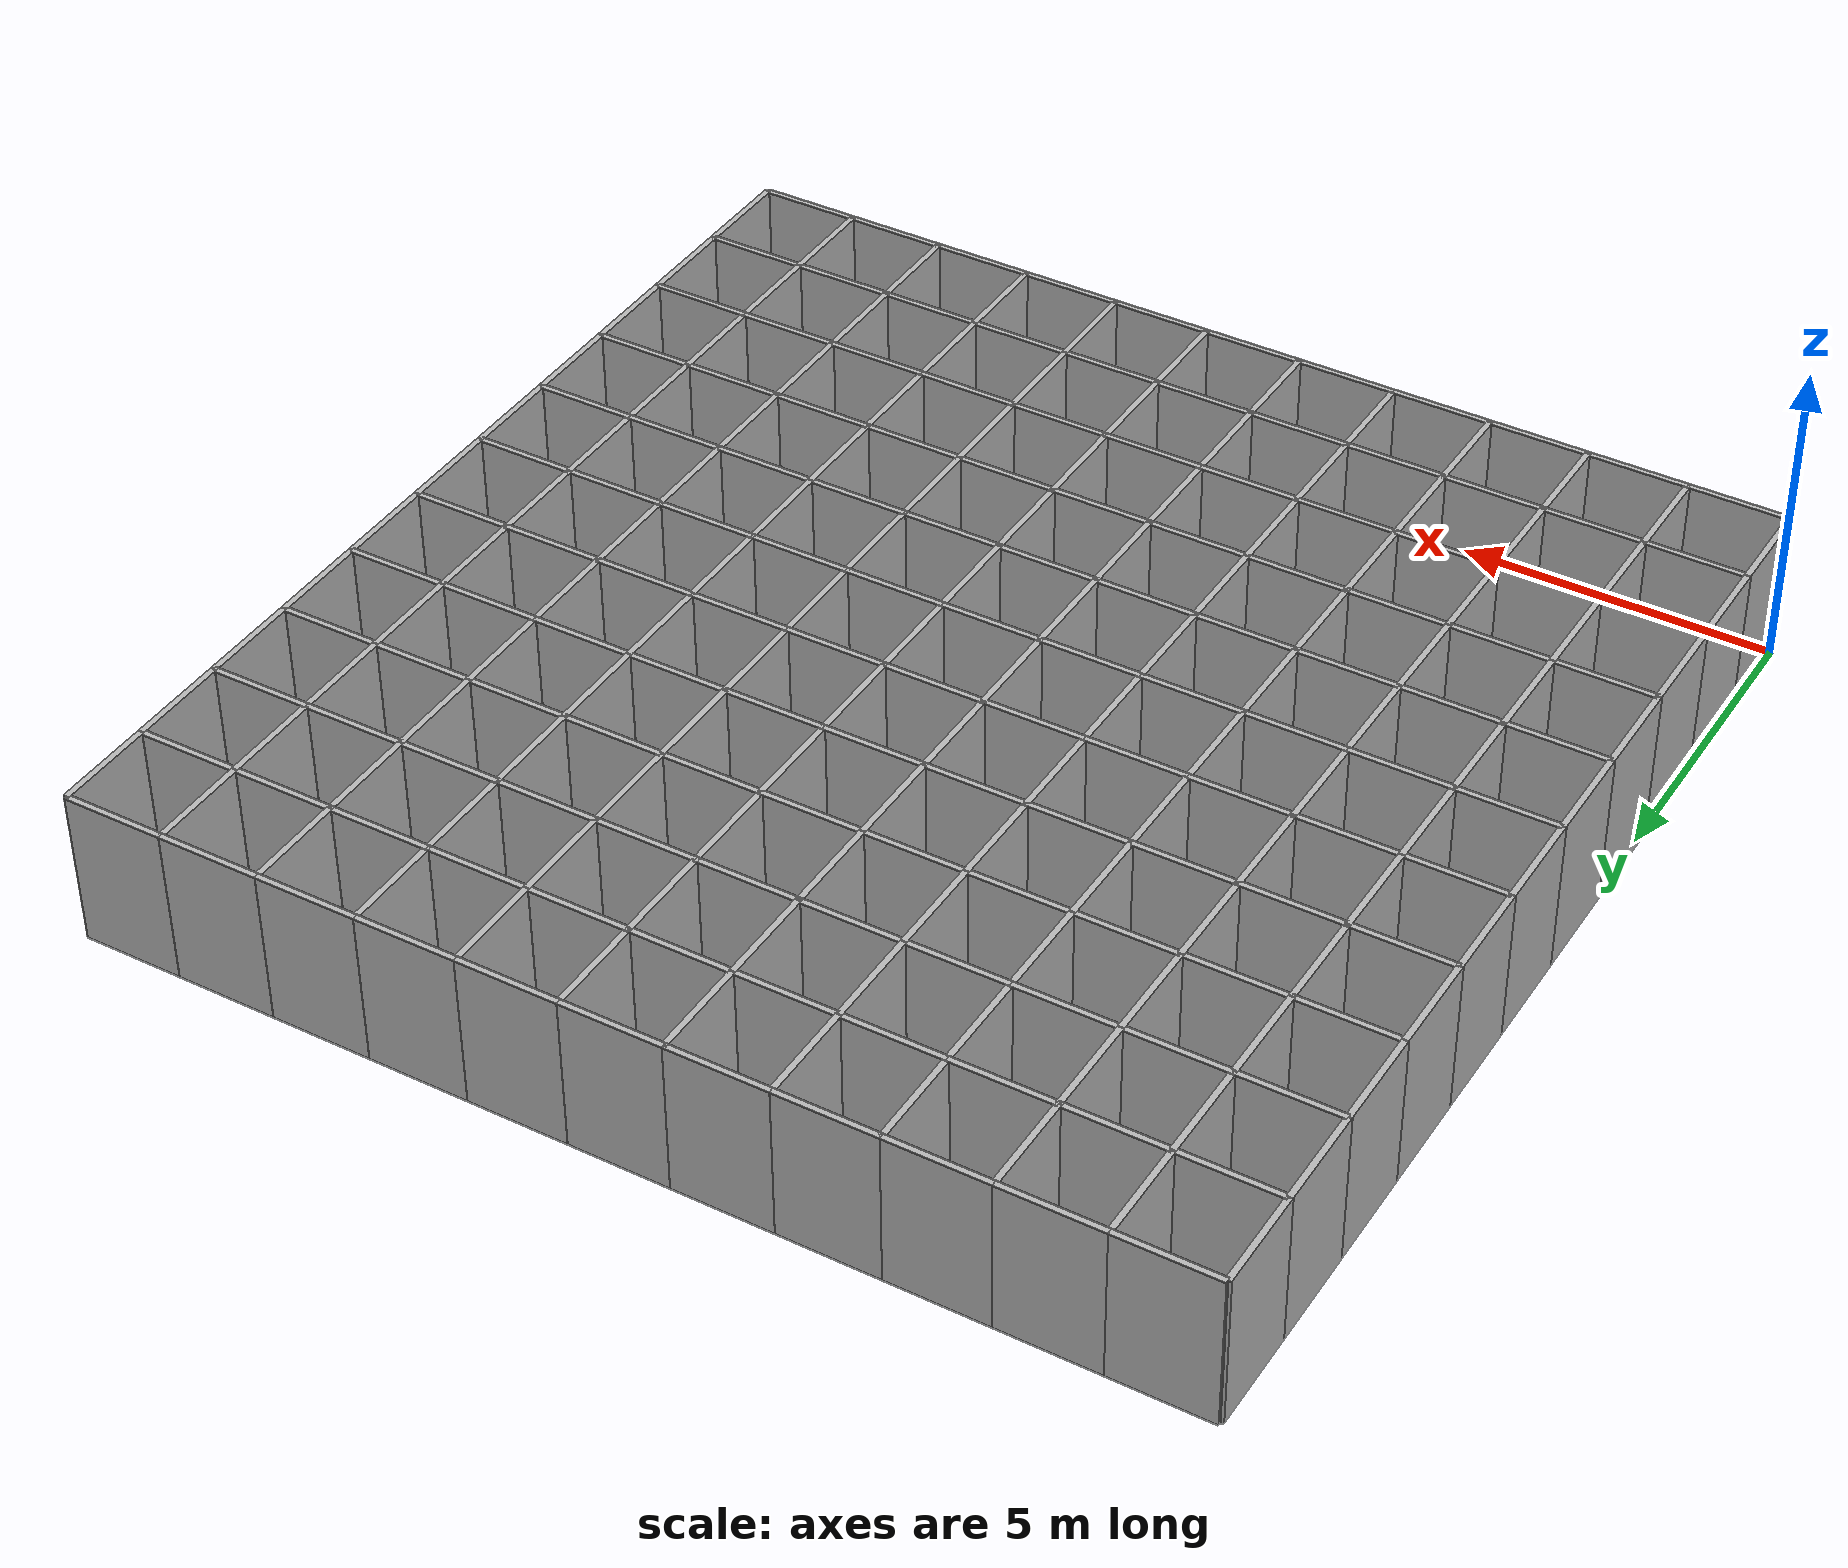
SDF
<?xml version="1.0" ?>
<sdf version="1.5">
  <model name="base_map">

    <include>
      <name>r1_0</name>
      <pose>0.8 0 0 0 0 0</pose>
      <uri>model://wall_unit_1_7</uri>
    </include>
    <include>
      <name>r2_0</name>
      <pose>2.4 0 0 0 0 0</pose>
      <uri>model://wall_unit_1_7</uri>
    </include>
    <include>
      <name>r3_0</name>
      <pose>4 0 0 0 0 0</pose>
      <uri>model://wall_unit_1_7</uri>
    </include>
    <include>
      <name>r4_0</name>
      <pose>5.6 0 0 0 0 0</pose>
      <uri>model://wall_unit_1_7</uri>
    </include>
    <include>
      <name>r5_0</name>
      <pose>7.2 0 0 0 0 0</pose>
      <uri>model://wall_unit_1_7</uri>
    </include>
    <include>
      <name>r6_0</name>
      <pose>8.8 0 0 0 0 0</pose>
      <uri>model://wall_unit_1_7</uri>
    </include>
    <include>
      <name>r7_0</name>
      <pose>10.4 0 0 0 0 0</pose>
      <uri>model://wall_unit_1_7</uri>
    </include>
    <include>
      <name>r8_0</name>
      <pose>12 0 0 0 0 0</pose>
      <uri>model://wall_unit_1_7</uri>
    </include>
    <include>
      <name>r9_0</name>
      <pose>13.6 0 0 0 0 0</pose>
      <uri>model://wall_unit_1_7</uri>
    </include>
    <include>
      <name>r10_0</name>
      <pose>15.2 0 0 0 0 0</pose>
      <uri>model://wall_unit_1_7</uri>
    </include>
    <include>
      <name>r11_0</name>
      <pose>16.8 0 0 0 0 0</pose>
      <uri>model://wall_unit_1_7</uri>
    </include>

    <include>
      <name>r1_1</name>
      <pose>0.8 1.6 0 0 0 0</pose>
      <uri>model://wall_unit_1_7</uri>
    </include>
    <include>
      <name>r2_1</name>
      <pose>2.4 1.6 0 0 0 0</pose>
      <uri>model://wall_unit_1_7</uri>
    </include>
    <include>
      <name>r3_1</name>
      <pose>4 1.6 0 0 0 0</pose>
      <uri>model://wall_unit_1_7</uri>
    </include>
    <include>
      <name>r4_1</name>
      <pose>5.6 1.6 0 0 0 0</pose>
      <uri>model://wall_unit_1_7</uri>
    </include>
    <include>
      <name>r5_1</name>
      <pose>7.2 1.6 0 0 0 0</pose>
      <uri>model://wall_unit_1_7</uri>
    </include>
    <include>
      <name>r6_1</name>
      <pose>8.8 1.6 0 0 0 0</pose>
      <uri>model://wall_unit_1_7</uri>
    </include>
    <include>
      <name>r7_1</name>
      <pose>10.4 1.6 0 0 0 0</pose>
      <uri>model://wall_unit_1_7</uri>
    </include>
    <include>
      <name>r8_1</name>
      <pose>12 1.6 0 0 0 0</pose>
      <uri>model://wall_unit_1_7</uri>
    </include>
    <include>
      <name>r9_1</name>
      <pose>13.6 1.6 0 0 0 0</pose>
      <uri>model://wall_unit_1_7</uri>
    </include>
    <include>
      <name>r10_1</name>
      <pose>15.2 1.6 0 0 0 0</pose>
      <uri>model://wall_unit_1_7</uri>
    </include>
    <include>
      <name>r11_1</name>
      <pose>16.8 1.6 0 0 0 0</pose>
      <uri>model://wall_unit_1_7</uri>
    </include>

    <include>
      <name>r1_2</name>
      <pose>0.8 3.2 0 0 0 0</pose>
      <uri>model://wall_unit_1_7</uri>
    </include>
    <include>
      <name>r2_2</name>
      <pose>2.4 3.2 0 0 0 0</pose>
      <uri>model://wall_unit_1_7</uri>
    </include>
    <include>
      <name>r3_2</name>
      <pose>4 3.2 0 0 0 0</pose>
      <uri>model://wall_unit_1_7</uri>
    </include>
    <include>
      <name>r4_2</name>
      <pose>5.6 3.2 0 0 0 0</pose>
      <uri>model://wall_unit_1_7</uri>
    </include>
    <include>
      <name>r5_2</name>
      <pose>7.2 3.2 0 0 0 0</pose>
      <uri>model://wall_unit_1_7</uri>
    </include>
    <include>
      <name>r6_2</name>
      <pose>8.8 3.2 0 0 0 0</pose>
      <uri>model://wall_unit_1_7</uri>
    </include>
    <include>
      <name>r7_2</name>
      <pose>10.4 3.2 0 0 0 0</pose>
      <uri>model://wall_unit_1_7</uri>
    </include>
    <include>
      <name>r8_2</name>
      <pose>12 3.2 0 0 0 0</pose>
      <uri>model://wall_unit_1_7</uri>
    </include>
    <include>
      <name>r9_2</name>
      <pose>13.6 3.2 0 0 0 0</pose>
      <uri>model://wall_unit_1_7</uri>
    </include>
    <include>
      <name>r10_2</name>
      <pose>15.2 3.2 0 0 0 0</pose>
      <uri>model://wall_unit_1_7</uri>
    </include>
    <include>
      <name>r11_2</name>
      <pose>16.8 3.2 0 0 0 0</pose>
      <uri>model://wall_unit_1_7</uri>
    </include>

    <include>
      <name>r1_3</name>
      <pose>0.8 4.8 0 0 0 0</pose>
      <uri>model://wall_unit_1_7</uri>
    </include>
    <include>
      <name>r2_3</name>
      <pose>2.4 4.8 0 0 0 0</pose>
      <uri>model://wall_unit_1_7</uri>
    </include>
    <include>
      <name>r3_3</name>
      <pose>4 4.8 0 0 0 0</pose>
      <uri>model://wall_unit_1_7</uri>
    </include>
    <include>
      <name>r4_3</name>
      <pose>5.6 4.8 0 0 0 0</pose>
      <uri>model://wall_unit_1_7</uri>
    </include>
    <include>
      <name>r5_3</name>
      <pose>7.2 4.8 0 0 0 0</pose>
      <uri>model://wall_unit_1_7</uri>
    </include>
    <include>
      <name>r6_3</name>
      <pose>8.8 4.8 0 0 0 0</pose>
      <uri>model://wall_unit_1_7</uri>
    </include>
    <include>
      <name>r7_3</name>
      <pose>10.4 4.8 0 0 0 0</pose>
      <uri>model://wall_unit_1_7</uri>
    </include>
    <include>
      <name>r8_3</name>
      <pose>12 4.8 0 0 0 0</pose>
      <uri>model://wall_unit_1_7</uri>
    </include>
    <include>
      <name>r9_3</name>
      <pose>13.6 4.8 0 0 0 0</pose>
      <uri>model://wall_unit_1_7</uri>
    </include>
    <include>
      <name>r10_3</name>
      <pose>15.2 4.8 0 0 0 0</pose>
      <uri>model://wall_unit_1_7</uri>
    </include>
    <include>
      <name>r11_3</name>
      <pose>16.8 4.8 0 0 0 0</pose>
      <uri>model://wall_unit_1_7</uri>
    </include>

    <include>
      <name>r1_4</name>
      <pose>0.8 6.4 0 0 0 0</pose>
      <uri>model://wall_unit_1_7</uri>
    </include>
    <include>
      <name>r2_4</name>
      <pose>2.4 6.4 0 0 0 0</pose>
      <uri>model://wall_unit_1_7</uri>
    </include>
    <include>
      <name>r3_4</name>
      <pose>4 6.4 0 0 0 0</pose>
      <uri>model://wall_unit_1_7</uri>
    </include>
    <include>
      <name>r4_4</name>
      <pose>5.6 6.4 0 0 0 0</pose>
      <uri>model://wall_unit_1_7</uri>
    </include>
    <include>
      <name>r5_4</name>
      <pose>7.2 6.4 0 0 0 0</pose>
      <uri>model://wall_unit_1_7</uri>
    </include>
    <include>
      <name>r6_4</name>
      <pose>8.8 6.4 0 0 0 0</pose>
      <uri>model://wall_unit_1_7</uri>
    </include>
    <include>
      <name>r7_4</name>
      <pose>10.4 6.4 0 0 0 0</pose>
      <uri>model://wall_unit_1_7</uri>
    </include>
    <include>
      <name>r8_4</name>
      <pose>12 6.4 0 0 0 0</pose>
      <uri>model://wall_unit_1_7</uri>
    </include>
    <include>
      <name>r9_4</name>
      <pose>13.6 6.4 0 0 0 0</pose>
      <uri>model://wall_unit_1_7</uri>
    </include>
    <include>
      <name>r10_4</name>
      <pose>15.2 6.4 0 0 0 0</pose>
      <uri>model://wall_unit_1_7</uri>
    </include>
    <include>
      <name>r11_4</name>
      <pose>16.8 6.4 0 0 0 0</pose>
      <uri>model://wall_unit_1_7</uri>
    </include>

    <include>
      <name>r1_5</name>
      <pose>0.8 8 0 0 0 0</pose>
      <uri>model://wall_unit_1_7</uri>
    </include>
    <include>
      <name>r2_5</name>
      <pose>2.4 8 0 0 0 0</pose>
      <uri>model://wall_unit_1_7</uri>
    </include>
    <include>
      <name>r3_5</name>
      <pose>4 8 0 0 0 0</pose>
      <uri>model://wall_unit_1_7</uri>
    </include>
    <include>
      <name>r4_5</name>
      <pose>5.6 8 0 0 0 0</pose>
      <uri>model://wall_unit_1_7</uri>
    </include>
    <include>
      <name>r5_5</name>
      <pose>7.2 8 0 0 0 0</pose>
      <uri>model://wall_unit_1_7</uri>
    </include>
    <include>
      <name>r6_5</name>
      <pose>8.8 8 0 0 0 0</pose>
      <uri>model://wall_unit_1_7</uri>
    </include>
    <include>
      <name>r7_5</name>
      <pose>10.4 8 0 0 0 0</pose>
      <uri>model://wall_unit_1_7</uri>
    </include>
    <include>
      <name>r8_5</name>
      <pose>12 8 0 0 0 0</pose>
      <uri>model://wall_unit_1_7</uri>
    </include>
    <include>
      <name>r9_5</name>
      <pose>13.6 8 0 0 0 0</pose>
      <uri>model://wall_unit_1_7</uri>
    </include>
    <include>
      <name>r10_5</name>
      <pose>15.2 8 0 0 0 0</pose>
      <uri>model://wall_unit_1_7</uri>
    </include>
    <include>
      <name>r11_5</name>
      <pose>16.8 8 0 0 0 0</pose>
      <uri>model://wall_unit_1_7</uri>
    </include>

    <include>
      <name>r1_6</name>
      <pose>0.8 9.6 0 0 0 0</pose>
      <uri>model://wall_unit_1_7</uri>
    </include>
    <include>
      <name>r2_6</name>
      <pose>2.4 9.6 0 0 0 0</pose>
      <uri>model://wall_unit_1_7</uri>
    </include>
    <include>
      <name>r3_6</name>
      <pose>4 9.6 0 0 0 0</pose>
      <uri>model://wall_unit_1_7</uri>
    </include>
    <include>
      <name>r4_6</name>
      <pose>5.6 9.6 0 0 0 0</pose>
      <uri>model://wall_unit_1_7</uri>
    </include>
    <include>
      <name>r5_6</name>
      <pose>7.2 9.6 0 0 0 0</pose>
      <uri>model://wall_unit_1_7</uri>
    </include>
    <include>
      <name>r6_6</name>
      <pose>8.8 9.6 0 0 0 0</pose>
      <uri>model://wall_unit_1_7</uri>
    </include>
    <include>
      <name>r7_6</name>
      <pose>10.4 9.6 0 0 0 0</pose>
      <uri>model://wall_unit_1_7</uri>
    </include>
    <include>
      <name>r8_6</name>
      <pose>12 9.6 0 0 0 0</pose>
      <uri>model://wall_unit_1_7</uri>
    </include>
    <include>
      <name>r9_6</name>
      <pose>13.6 9.6 0 0 0 0</pose>
      <uri>model://wall_unit_1_7</uri>
    </include>
    <include>
      <name>r10_6</name>
      <pose>15.2 9.6 0 0 0 0</pose>
      <uri>model://wall_unit_1_7</uri>
    </include>
    <include>
      <name>r11_6</name>
      <pose>16.8 9.6 0 0 0 0</pose>
      <uri>model://wall_unit_1_7</uri>
    </include>

    <include>
      <name>r1_7</name>
      <pose>0.8 11.2 0 0 0 0</pose>
      <uri>model://wall_unit_1_7</uri>
    </include>
    <include>
      <name>r2_7</name>
      <pose>2.4 11.2 0 0 0 0</pose>
      <uri>model://wall_unit_1_7</uri>
    </include>
    <include>
      <name>r3_7</name>
      <pose>4 11.2 0 0 0 0</pose>
      <uri>model://wall_unit_1_7</uri>
    </include>
    <include>
      <name>r4_7</name>
      <pose>5.6 11.2 0 0 0 0</pose>
      <uri>model://wall_unit_1_7</uri>
    </include>
    <include>
      <name>r5_7</name>
      <pose>7.2 11.2 0 0 0 0</pose>
      <uri>model://wall_unit_1_7</uri>
    </include>
    <include>
      <name>r6_7</name>
      <pose>8.8 11.2 0 0 0 0</pose>
      <uri>model://wall_unit_1_7</uri>
    </include>
    <include>
      <name>r7_7</name>
      <pose>10.4 11.2 0 0 0 0</pose>
      <uri>model://wall_unit_1_7</uri>
    </include>
    <include>
      <name>r8_7</name>
      <pose>12 11.2 0 0 0 0</pose>
      <uri>model://wall_unit_1_7</uri>
    </include>
    <include>
      <name>r9_7</name>
      <pose>13.6 11.2 0 0 0 0</pose>
      <uri>model://wall_unit_1_7</uri>
    </include>
    <include>
      <name>r10_7</name>
      <pose>15.2 11.2 0 0 0 0</pose>
      <uri>model://wall_unit_1_7</uri>
    </include>
    <include>
      <name>r11_7</name>
      <pose>16.8 11.2 0 0 0 0</pose>
      <uri>model://wall_unit_1_7</uri>
    </include>

    <include>
      <name>r1_8</name>
      <pose>0.8 12.8 0 0 0 0</pose>
      <uri>model://wall_unit_1_7</uri>
    </include>
    <include>
      <name>r2_8</name>
      <pose>2.4 12.8 0 0 0 0</pose>
      <uri>model://wall_unit_1_7</uri>
    </include>
    <include>
      <name>r3_8</name>
      <pose>4 12.8 0 0 0 0</pose>
      <uri>model://wall_unit_1_7</uri>
    </include>
    <include>
      <name>r4_8</name>
      <pose>5.6 12.8 0 0 0 0</pose>
      <uri>model://wall_unit_1_7</uri>
    </include>
    <include>
      <name>r5_8</name>
      <pose>7.2 12.8 0 0 0 0</pose>
      <uri>model://wall_unit_1_7</uri>
    </include>
    <include>
      <name>r6_8</name>
      <pose>8.8 12.8 0 0 0 0</pose>
      <uri>model://wall_unit_1_7</uri>
    </include>
    <include>
      <name>r7_8</name>
      <pose>10.4 12.8 0 0 0 0</pose>
      <uri>model://wall_unit_1_7</uri>
    </include>
    <include>
      <name>r8_8</name>
      <pose>12 12.8 0 0 0 0</pose>
      <uri>model://wall_unit_1_7</uri>
    </include>
    <include>
      <name>r9_8</name>
      <pose>13.6 12.8 0 0 0 0</pose>
      <uri>model://wall_unit_1_7</uri>
    </include>
    <include>
      <name>r10_8</name>
      <pose>15.2 12.8 0 0 0 0</pose>
      <uri>model://wall_unit_1_7</uri>
    </include>
    <include>
      <name>r11_8</name>
      <pose>16.8 12.8 0 0 0 0</pose>
      <uri>model://wall_unit_1_7</uri>
    </include>

    <include>
      <name>r1_9</name>
      <pose>0.8 14.4 0 0 0 0</pose>
      <uri>model://wall_unit_1_7</uri>
    </include>
    <include>
      <name>r2_9</name>
      <pose>2.4 14.4 0 0 0 0</pose>
      <uri>model://wall_unit_1_7</uri>
    </include>
    <include>
      <name>r3_9</name>
      <pose>4 14.4 0 0 0 0</pose>
      <uri>model://wall_unit_1_7</uri>
    </include>
    <include>
      <name>r4_9</name>
      <pose>5.6 14.4 0 0 0 0</pose>
      <uri>model://wall_unit_1_7</uri>
    </include>
    <include>
      <name>r5_9</name>
      <pose>7.2 14.4 0 0 0 0</pose>
      <uri>model://wall_unit_1_7</uri>
    </include>
    <include>
      <name>r6_9</name>
      <pose>8.8 14.4 0 0 0 0</pose>
      <uri>model://wall_unit_1_7</uri>
    </include>
    <include>
      <name>r7_9</name>
      <pose>10.4 14.4 0 0 0 0</pose>
      <uri>model://wall_unit_1_7</uri>
    </include>
    <include>
      <name>r8_9</name>
      <pose>12 14.4 0 0 0 0</pose>
      <uri>model://wall_unit_1_7</uri>
    </include>
    <include>
      <name>r9_9</name>
      <pose>13.6 14.4 0 0 0 0</pose>
      <uri>model://wall_unit_1_7</uri>
    </include>
    <include>
      <name>r10_9</name>
      <pose>15.2 14.4 0 0 0 0</pose>
      <uri>model://wall_unit_1_7</uri>
    </include>
    <include>
      <name>r11_9</name>
      <pose>16.8 14.4 0 0 0 0</pose>
      <uri>model://wall_unit_1_7</uri>
    </include>

    <include>
      <name>r1_10</name>
      <pose>0.8 16 0 0 0 0</pose>
      <uri>model://wall_unit_1_7</uri>
    </include>
    <include>
      <name>r2_10</name>
      <pose>2.4 16 0 0 0 0</pose>
      <uri>model://wall_unit_1_7</uri>
    </include>
    <include>
      <name>r3_10</name>
      <pose>4 16 0 0 0 0</pose>
      <uri>model://wall_unit_1_7</uri>
    </include>
    <include>
      <name>r4_10</name>
      <pose>5.6 16 0 0 0 0</pose>
      <uri>model://wall_unit_1_7</uri>
    </include>
    <include>
      <name>r5_10</name>
      <pose>7.2 16 0 0 0 0</pose>
      <uri>model://wall_unit_1_7</uri>
    </include>
    <include>
      <name>r6_10</name>
      <pose>8.8 16 0 0 0 0</pose>
      <uri>model://wall_unit_1_7</uri>
    </include>
    <include>
      <name>r7_10</name>
      <pose>10.4 16 0 0 0 0</pose>
      <uri>model://wall_unit_1_7</uri>
    </include>
    <include>
      <name>r8_10</name>
      <pose>12 16 0 0 0 0</pose>
      <uri>model://wall_unit_1_7</uri>
    </include>
    <include>
      <name>r9_10</name>
      <pose>13.6 16 0 0 0 0</pose>
      <uri>model://wall_unit_1_7</uri>
    </include>
    <include>
      <name>r10_10</name>
      <pose>15.2 16 0 0 0 0</pose>
      <uri>model://wall_unit_1_7</uri>
    </include>
    <include>
      <name>r11_10</name>
      <pose>16.8 16 0 0 0 0</pose>
      <uri>model://wall_unit_1_7</uri>
    </include>

    <include>
      <name>r1_11</name>
      <pose>0.8 17.6 0 0 0 0</pose>
      <uri>model://wall_unit_1_7</uri>
    </include>
    <include>
      <name>r2_11</name>
      <pose>2.4 17.6 0 0 0 0</pose>
      <uri>model://wall_unit_1_7</uri>
    </include>
    <include>
      <name>r3_11</name>
      <pose>4 17.6 0 0 0 0</pose>
      <uri>model://wall_unit_1_7</uri>
    </include>
    <include>
      <name>r4_11</name>
      <pose>5.6 17.6 0 0 0 0</pose>
      <uri>model://wall_unit_1_7</uri>
    </include>
    <include>
      <name>r5_11</name>
      <pose>7.2 17.6 0 0 0 0</pose>
      <uri>model://wall_unit_1_7</uri>
    </include>
    <include>
      <name>r6_11</name>
      <pose>8.8 17.6 0 0 0 0</pose>
      <uri>model://wall_unit_1_7</uri>
    </include>
    <include>
      <name>r7_11</name>
      <pose>10.4 17.6 0 0 0 0</pose>
      <uri>model://wall_unit_1_7</uri>
    </include>
    <include>
      <name>r8_11</name>
      <pose>12 17.6 0 0 0 0</pose>
      <uri>model://wall_unit_1_7</uri>
    </include>
    <include>
      <name>r9_11</name>
      <pose>13.6 17.6 0 0 0 0</pose>
      <uri>model://wall_unit_1_7</uri>
    </include>
    <include>
      <name>r10_11</name>
      <pose>15.2 17.6 0 0 0 0</pose>
      <uri>model://wall_unit_1_7</uri>
    </include>
    <include>
      <name>r11_11</name>
      <pose>16.8 17.6 0 0 0 0</pose>
      <uri>model://wall_unit_1_7</uri>
    </include>

    <include>
      <name>c0_1</name>
      <pose>0 0.8 0 0 0 1.57</pose>
      <uri>model://wall_unit_1_7</uri>
    </include>
    <include>
      <name>c0_2</name>
      <pose>0 2.4 0 0 0 1.57</pose>
      <uri>model://wall_unit_1_7</uri>
    </include>
    <include>
      <name>c0_3</name>
      <pose>0 4 0 0 0 1.57</pose>
      <uri>model://wall_unit_1_7</uri>
    </include>
    <include>
      <name>c0_4</name>
      <pose>0 5.6 0 0 0 1.57</pose>
      <uri>model://wall_unit_1_7</uri>
    </include>
    <include>
      <name>c0_5</name>
      <pose>0 7.2 0 0 0 1.57</pose>
      <uri>model://wall_unit_1_7</uri>
    </include>
    <include>
      <name>c0_6</name>
      <pose>0 8.8 0 0 0 1.57</pose>
      <uri>model://wall_unit_1_7</uri>
    </include>
    <include>
      <name>c0_7</name>
      <pose>0 10.4 0 0 0 1.57</pose>
      <uri>model://wall_unit_1_7</uri>
    </include>
    <include>
      <name>c0_8</name>
      <pose>0 12 0 0 0 1.57</pose>
      <uri>model://wall_unit_1_7</uri>
    </include>
    <include>
      <name>c0_9</name>
      <pose>0 13.6 0 0 0 1.57</pose>
      <uri>model://wall_unit_1_7</uri>
    </include>
    <include>
      <name>c0_10</name>
      <pose>0 15.2 0 0 0 1.57</pose>
      <uri>model://wall_unit_1_7</uri>
    </include>
    <include>
      <name>c0_11</name>
      <pose>0 16.8 0 0 0 1.57</pose>
      <uri>model://wall_unit_1_7</uri>
    </include>

    <include>
      <name>c1_1</name>
      <pose>1.6 0.8 0 0 0 1.57</pose>
      <uri>model://wall_unit_1_7</uri>
    </include>
    <include>
      <name>c1_2</name>
      <pose>1.6 2.4 0 0 0 1.57</pose>
      <uri>model://wall_unit_1_7</uri>
    </include>
    <include>
      <name>c1_3</name>
      <pose>1.6 4 0 0 0 1.57</pose>
      <uri>model://wall_unit_1_7</uri>
    </include>
    <include>
      <name>c1_4</name>
      <pose>1.6 5.6 0 0 0 1.57</pose>
      <uri>model://wall_unit_1_7</uri>
    </include>
    <include>
      <name>c1_5</name>
      <pose>1.6 7.2 0 0 0 1.57</pose>
      <uri>model://wall_unit_1_7</uri>
    </include>
    <include>
      <name>c1_6</name>
      <pose>1.6 8.8 0 0 0 1.57</pose>
      <uri>model://wall_unit_1_7</uri>
    </include>
    <include>
      <name>c1_7</name>
      <pose>1.6 10.4 0 0 0 1.57</pose>
      <uri>model://wall_unit_1_7</uri>
    </include>
    <include>
      <name>c1_8</name>
      <pose>1.6 12 0 0 0 1.57</pose>
      <uri>model://wall_unit_1_7</uri>
    </include>
    <include>
      <name>c1_9</name>
      <pose>1.6 13.6 0 0 0 1.57</pose>
      <uri>model://wall_unit_1_7</uri>
    </include>
    <include>
      <name>c1_10</name>
      <pose>1.6 15.2 0 0 0 1.57</pose>
      <uri>model://wall_unit_1_7</uri>
    </include>
    <include>
      <name>c1_11</name>
      <pose>1.6 16.8 0 0 0 1.57</pose>
      <uri>model://wall_unit_1_7</uri>
    </include>

    <include>
      <name>c2_1</name>
      <pose>3.2 0.8 0 0 0 1.57</pose>
      <uri>model://wall_unit_1_7</uri>
    </include>
    <include>
      <name>c2_2</name>
      <pose>3.2 2.4 0 0 0 1.57</pose>
      <uri>model://wall_unit_1_7</uri>
    </include>
    <include>
      <name>c2_3</name>
      <pose>3.2 4 0 0 0 1.57</pose>
      <uri>model://wall_unit_1_7</uri>
    </include>
    <include>
      <name>c2_4</name>
      <pose>3.2 5.6 0 0 0 1.57</pose>
      <uri>model://wall_unit_1_7</uri>
    </include>
    <include>
      <name>c2_5</name>
      <pose>3.2 7.2 0 0 0 1.57</pose>
      <uri>model://wall_unit_1_7</uri>
    </include>
    <include>
      <name>c2_6</name>
      <pose>3.2 8.8 0 0 0 1.57</pose>
      <uri>model://wall_unit_1_7</uri>
    </include>
    <include>
      <name>c2_7</name>
      <pose>3.2 10.4 0 0 0 1.57</pose>
      <uri>model://wall_unit_1_7</uri>
    </include>
    <include>
      <name>c2_8</name>
      <pose>3.2 12 0 0 0 1.57</pose>
      <uri>model://wall_unit_1_7</uri>
    </include>
    <include>
      <name>c2_9</name>
      <pose>3.2 13.6 0 0 0 1.57</pose>
      <uri>model://wall_unit_1_7</uri>
    </include>
    <include>
      <name>c2_10</name>
      <pose>3.2 15.2 0 0 0 1.57</pose>
      <uri>model://wall_unit_1_7</uri>
    </include>
    <include>
      <name>c2_11</name>
      <pose>3.2 16.8 0 0 0 1.57</pose>
      <uri>model://wall_unit_1_7</uri>
    </include>

    <include>
      <name>c3_1</name>
      <pose>4.8 0.8 0 0 0 1.57</pose>
      <uri>model://wall_unit_1_7</uri>
    </include>
    <include>
      <name>c3_2</name>
      <pose>4.8 2.4 0 0 0 1.57</pose>
      <uri>model://wall_unit_1_7</uri>
    </include>
    <include>
      <name>c3_3</name>
      <pose>4.8 4 0 0 0 1.57</pose>
      <uri>model://wall_unit_1_7</uri>
    </include>
    <include>
      <name>c3_4</name>
      <pose>4.8 5.6 0 0 0 1.57</pose>
      <uri>model://wall_unit_1_7</uri>
    </include>
    <include>
      <name>c3_5</name>
      <pose>4.8 7.2 0 0 0 1.57</pose>
      <uri>model://wall_unit_1_7</uri>
    </include>
    <include>
      <name>c3_6</name>
      <pose>4.8 8.8 0 0 0 1.57</pose>
      <uri>model://wall_unit_1_7</uri>
    </include>
    <include>
      <name>c3_7</name>
      <pose>4.8 10.4 0 0 0 1.57</pose>
      <uri>model://wall_unit_1_7</uri>
    </include>
    <include>
      <name>c3_8</name>
      <pose>4.8 12 0 0 0 1.57</pose>
      <uri>model://wall_unit_1_7</uri>
    </include>
    <include>
      <name>c3_9</name>
      <pose>4.8 13.6 0 0 0 1.57</pose>
      <uri>model://wall_unit_1_7</uri>
    </include>
    <include>
      <name>c3_10</name>
      <pose>4.8 15.2 0 0 0 1.57</pose>
      <uri>model://wall_unit_1_7</uri>
    </include>
    <include>
      <name>c3_11</name>
      <pose>4.8 16.8 0 0 0 1.57</pose>
      <uri>model://wall_unit_1_7</uri>
    </include>

    <include>
      <name>c4_1</name>
      <pose>6.4 0.8 0 0 0 1.57</pose>
      <uri>model://wall_unit_1_7</uri>
    </include>
    <include>
      <name>c4.4_2</name>
      <pose>6.4 2.4 0 0 0 1.57</pose>
      <uri>model://wall_unit_1_7</uri>
    </include>
    <include>
      <name>c4_3</name>
      <pose>6.4 4 0 0 0 1.57</pose>
      <uri>model://wall_unit_1_7</uri>
    </include>
    <include>
      <name>c4_4</name>
      <pose>6.4 5.6 0 0 0 1.57</pose>
      <uri>model://wall_unit_1_7</uri>
    </include>
    <include>
      <name>c4_5</name>
      <pose>6.4 7.2 0 0 0 1.57</pose>
      <uri>model://wall_unit_1_7</uri>
    </include>
    <include>
      <name>c4_6</name>
      <pose>6.4 8.8 0 0 0 1.57</pose>
      <uri>model://wall_unit_1_7</uri>
    </include>
    <include>
      <name>c4_7</name>
      <pose>6.4 10.4 0 0 0 1.57</pose>
      <uri>model://wall_unit_1_7</uri>
    </include>
    <include>
      <name>c4_8</name>
      <pose>6.4 12 0 0 0 1.57</pose>
      <uri>model://wall_unit_1_7</uri>
    </include>
    <include>
      <name>c4_9</name>
      <pose>6.4 13.6 0 0 0 1.57</pose>
      <uri>model://wall_unit_1_7</uri>
    </include>
    <include>
      <name>c4_10</name>
      <pose>6.4 15.2 0 0 0 1.57</pose>
      <uri>model://wall_unit_1_7</uri>
    </include>
    <include>
      <name>c4_11</name>
      <pose>6.4 16.8 0 0 0 1.57</pose>
      <uri>model://wall_unit_1_7</uri>
    </include>

    <include>
      <name>c5_1</name>
      <pose>8 0.8 0 0 0 1.57</pose>
      <uri>model://wall_unit_1_7</uri>
    </include>
    <include>
      <name>c5_2</name>
      <pose>8 2.4 0 0 0 1.57</pose>
      <uri>model://wall_unit_1_7</uri>
    </include>
    <include>
      <name>c5_3</name>
      <pose>8 4 0 0 0 1.57</pose>
      <uri>model://wall_unit_1_7</uri>
    </include>
    <include>
      <name>c5_4</name>
      <pose>8 5.6 0 0 0 1.57</pose>
      <uri>model://wall_unit_1_7</uri>
    </include>
    <include>
      <name>c5_5</name>
      <pose>8 7.2 0 0 0 1.57</pose>
      <uri>model://wall_unit_1_7</uri>
    </include>
    <include>
      <name>c5_6</name>
      <pose>8 8.8 0 0 0 1.57</pose>
      <uri>model://wall_unit_1_7</uri>
    </include>
    <include>
      <name>c5_7</name>
      <pose>8 10.4 0 0 0 1.57</pose>
      <uri>model://wall_unit_1_7</uri>
    </include>
    <include>
      <name>c5_8</name>
      <pose>8 12 0 0 0 1.57</pose>
      <uri>model://wall_unit_1_7</uri>
    </include>
    <include>
      <name>c5_9</name>
      <pose>8 13.6 0 0 0 1.57</pose>
      <uri>model://wall_unit_1_7</uri>
    </include>
    <include>
      <name>c5_10</name>
      <pose>8 15.2 0 0 0 1.57</pose>
      <uri>model://wall_unit_1_7</uri>
    </include>
    <include>
      <name>c5_11</name>
      <pose>8 16.8 0 0 0 1.57</pose>
      <uri>model://wall_unit_1_7</uri>
    </include>

    <include>
      <name>c6_1</name>
      <pose>9.6 0.8 0 0 0 1.57</pose>
      <uri>model://wall_unit_1_7</uri>
    </include>
    <include>
      <name>c6_2</name>
      <pose>9.6 2.4 0 0 0 1.57</pose>
      <uri>model://wall_unit_1_7</uri>
    </include>
    <include>
      <name>c6_3</name>
      <pose>9.6 4 0 0 0 1.57</pose>
      <uri>model://wall_unit_1_7</uri>
    </include>
    <include>
      <name>c6_4</name>
      <pose>9.6 5.6 0 0 0 1.57</pose>
      <uri>model://wall_unit_1_7</uri>
    </include>
    <include>
      <name>c6_5</name>
      <pose>9.6 7.2 0 0 0 1.57</pose>
      <uri>model://wall_unit_1_7</uri>
    </include>
    <include>
      <name>c6_6</name>
      <pose>9.6 8.8 0 0 0 1.57</pose>
      <uri>model://wall_unit_1_7</uri>
    </include>
    <include>
      <name>c6_7</name>
      <pose>9.6 10.4 0 0 0 1.57</pose>
      <uri>model://wall_unit_1_7</uri>
    </include>
    <include>
      <name>c6_8</name>
      <pose>9.6 12 0 0 0 1.57</pose>
      <uri>model://wall_unit_1_7</uri>
    </include>
    <include>
      <name>c6_9</name>
      <pose>9.6 13.6 0 0 0 1.57</pose>
      <uri>model://wall_unit_1_7</uri>
    </include>
    <include>
      <name>c6_10</name>
      <pose>9.6 15.2 0 0 0 1.57</pose>
      <uri>model://wall_unit_1_7</uri>
    </include>
    <include>
      <name>c6_11</name>
      <pose>9.6 16.8 0 0 0 1.57</pose>
      <uri>model://wall_unit_1_7</uri>
    </include>

    <include>
      <name>c7_1</name>
      <pose>11.2 0.8 0 0 0 1.57</pose>
      <uri>model://wall_unit_1_7</uri>
    </include>
    <include>
      <name>c7_2</name>
      <pose>11.2 2.4 0 0 0 1.57</pose>
      <uri>model://wall_unit_1_7</uri>
    </include>
    <include>
      <name>c7_3</name>
      <pose>11.2 4 0 0 0 1.57</pose>
      <uri>model://wall_unit_1_7</uri>
    </include>
    <include>
      <name>c7_4</name>
      <pose>11.2 5.6 0 0 0 1.57</pose>
      <uri>model://wall_unit_1_7</uri>
    </include>
    <include>
      <name>c7_5</name>
      <pose>11.2 7.2 0 0 0 1.57</pose>
      <uri>model://wall_unit_1_7</uri>
    </include>
    <include>
      <name>c7_6</name>
      <pose>11.2 8.8 0 0 0 1.57</pose>
      <uri>model://wall_unit_1_7</uri>
    </include>
    <include>
      <name>c7_7</name>
      <pose>11.2 10.4 0 0 0 1.57</pose>
      <uri>model://wall_unit_1_7</uri>
    </include>
    <include>
      <name>c7_8</name>
      <pose>11.2 12 0 0 0 1.57</pose>
      <uri>model://wall_unit_1_7</uri>
    </include>
    <include>
      <name>c7_9</name>
      <pose>11.2 13.6 0 0 0 1.57</pose>
      <uri>model://wall_unit_1_7</uri>
    </include>
    <include>
      <name>c7_10</name>
      <pose>11.2 15.2 0 0 0 1.57</pose>
      <uri>model://wall_unit_1_7</uri>
    </include>
    <include>
      <name>c7_11</name>
      <pose>11.2 16.8 0 0 0 1.57</pose>
      <uri>model://wall_unit_1_7</uri>
    </include>

    <include>
      <name>c8_1</name>
      <pose>12.8 0.8 0 0 0 1.57</pose>
      <uri>model://wall_unit_1_7</uri>
    </include>
    <include>
      <name>c8_2</name>
      <pose>12.8 2.4 0 0 0 1.57</pose>
      <uri>model://wall_unit_1_7</uri>
    </include>
    <include>
      <name>c8_3</name>
      <pose>12.8 4 0 0 0 1.57</pose>
      <uri>model://wall_unit_1_7</uri>
    </include>
    <include>
      <name>c8_4</name>
      <pose>12.8 5.6 0 0 0 1.57</pose>
      <uri>model://wall_unit_1_7</uri>
    </include>
    <include>
      <name>c8_5</name>
      <pose>12.8 7.2 0 0 0 1.57</pose>
      <uri>model://wall_unit_1_7</uri>
    </include>
    <include>
      <name>c8_6</name>
      <pose>12.8 8.8 0 0 0 1.57</pose>
      <uri>model://wall_unit_1_7</uri>
    </include>
    <include>
      <name>c8_7</name>
      <pose>12.8 10.4 0 0 0 1.57</pose>
      <uri>model://wall_unit_1_7</uri>
    </include>
    <include>
      <name>c8_8</name>
      <pose>12.8 12 0 0 0 1.57</pose>
      <uri>model://wall_unit_1_7</uri>
    </include>
    <include>
      <name>c8_9</name>
      <pose>12.8 13.6 0 0 0 1.57</pose>
      <uri>model://wall_unit_1_7</uri>
    </include>
    <include>
      <name>c8_10</name>
      <pose>12.8 15.2 0 0 0 1.57</pose>
      <uri>model://wall_unit_1_7</uri>
    </include>
    <include>
      <name>c8_11</name>
      <pose>12.8 16.8 0 0 0 1.57</pose>
      <uri>model://wall_unit_1_7</uri>
    </include>

    <include>
      <name>c9_1</name>
      <pose>14.4 0.8 0 0 0 1.57</pose>
      <uri>model://wall_unit_1_7</uri>
    </include>
    <include>
      <name>c9_2</name>
      <pose>14.4 2.4 0 0 0 1.57</pose>
      <uri>model://wall_unit_1_7</uri>
    </include>
    <include>
      <name>c9_3</name>
      <pose>14.4 4 0 0 0 1.57</pose>
      <uri>model://wall_unit_1_7</uri>
    </include>
    <include>
      <name>c9_4</name>
      <pose>14.4 5.6 0 0 0 1.57</pose>
      <uri>model://wall_unit_1_7</uri>
    </include>
    <include>
      <name>c9_5</name>
      <pose>14.4 7.2 0 0 0 1.57</pose>
      <uri>model://wall_unit_1_7</uri>
    </include>
    <include>
      <name>c9_6</name>
      <pose>14.4 8.8 0 0 0 1.57</pose>
      <uri>model://wall_unit_1_7</uri>
    </include>
    <include>
      <name>c9_7</name>
      <pose>14.4 10.4 0 0 0 1.57</pose>
      <uri>model://wall_unit_1_7</uri>
    </include>
    <include>
      <name>c9_8</name>
      <pose>14.4 12 0 0 0 1.57</pose>
      <uri>model://wall_unit_1_7</uri>
    </include>
    <include>
      <name>c9_9</name>
      <pose>14.4 13.6 0 0 0 1.57</pose>
      <uri>model://wall_unit_1_7</uri>
    </include>
    <include>
      <name>c9_10</name>
      <pose>14.4 15.2 0 0 0 1.57</pose>
      <uri>model://wall_unit_1_7</uri>
    </include>
    <include>
      <name>c9_11</name>
      <pose>14.4 16.8 0 0 0 1.57</pose>
      <uri>model://wall_unit_1_7</uri>
    </include>

    <include>
      <name>c10_1</name>
      <pose>16 0.8 0 0 0 1.57</pose>
      <uri>model://wall_unit_1_7</uri>
    </include>
    <include>
      <name>c10_2</name>
      <pose>16 2.4 0 0 0 1.57</pose>
      <uri>model://wall_unit_1_7</uri>
    </include>
    <include>
      <name>c10_3</name>
      <pose>16 4 0 0 0 1.57</pose>
      <uri>model://wall_unit_1_7</uri>
    </include>
    <include>
      <name>c10_4</name>
      <pose>16 5.6 0 0 0 1.57</pose>
      <uri>model://wall_unit_1_7</uri>
    </include>
    <include>
      <name>c10_5</name>
      <pose>16 7.2 0 0 0 1.57</pose>
      <uri>model://wall_unit_1_7</uri>
    </include>
    <include>
      <name>c10_6</name>
      <pose>16 8.8 0 0 0 1.57</pose>
      <uri>model://wall_unit_1_7</uri>
    </include>
    <include>
      <name>c10_7</name>
      <pose>16 10.4 0 0 0 1.57</pose>
      <uri>model://wall_unit_1_7</uri>
    </include>
    <include>
      <name>c10_8</name>
      <pose>16 12 0 0 0 1.57</pose>
      <uri>model://wall_unit_1_7</uri>
    </include>
    <include>
      <name>c10_9</name>
      <pose>16 13.6 0 0 0 1.57</pose>
      <uri>model://wall_unit_1_7</uri>
    </include>
    <include>
      <name>c10_10</name>
      <pose>16 15.2 0 0 0 1.57</pose>
      <uri>model://wall_unit_1_7</uri>
    </include>
    <include>
      <name>c10_11</name>
      <pose>16 16.8 0 0 0 1.57</pose>
      <uri>model://wall_unit_1_7</uri>
    </include>

    <include>
      <name>c11_1</name>
      <pose>17.6 0.8 0 0 0 1.57</pose>
      <uri>model://wall_unit_1_7</uri>
    </include>
    <include>
      <name>c11_2</name>
      <pose>17.6 2.4 0 0 0 1.57</pose>
      <uri>model://wall_unit_1_7</uri>
    </include>
    <include>
      <name>c11_3</name>
      <pose>17.6 4 0 0 0 1.57</pose>
      <uri>model://wall_unit_1_7</uri>
    </include>
    <include>
      <name>c11_4</name>
      <pose>17.6 5.6 0 0 0 1.57</pose>
      <uri>model://wall_unit_1_7</uri>
    </include>
    <include>
      <name>c11_5</name>
      <pose>17.6 7.2 0 0 0 1.57</pose>
      <uri>model://wall_unit_1_7</uri>
    </include>
    <include>
      <name>c11_6</name>
      <pose>17.6 8.8 0 0 0 1.57</pose>
      <uri>model://wall_unit_1_7</uri>
    </include>
    <include>
      <name>c11_7</name>
      <pose>17.6 10.4 0 0 0 1.57</pose>
      <uri>model://wall_unit_1_7</uri>
    </include>
    <include>
      <name>c11_8</name>
      <pose>17.6 12 0 0 0 1.57</pose>
      <uri>model://wall_unit_1_7</uri>
    </include>
    <include>
      <name>c11_9</name>
      <pose>17.6 13.6 0 0 0 1.57</pose>
      <uri>model://wall_unit_1_7</uri>
    </include>
    <include>
      <name>c11_10</name>
      <pose>17.6 15.2 0 0 0 1.57</pose>
      <uri>model://wall_unit_1_7</uri>
    </include>
    <include>
      <name>c11_11</name>
      <pose>17.6 16.8 0 0 0 1.57</pose>
      <uri>model://wall_unit_1_7</uri>
    </include>

  </model>
</sdf>

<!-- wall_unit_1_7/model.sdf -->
<sdf version='1.6'>
  <model name='wall_unit_1_7'>
    <pose frame=''>0 0 0 0 -0 0</pose>
    <link name='link'>
      <collision name='collision'>
        <geometry>
          <box>
            <size>1.6 0.1 2.5</size>
          </box>
        </geometry>
        <pose frame=''>0 0 1.25 0 -0 0</pose>
      </collision>
      <visual name='visual'>
        <pose frame=''>0 0 1.25 0 -0 0</pose>
        <geometry>
          <box>
            <size>1.6 0.1 2.5</size>
          </box>
        </geometry>
        <material>
          <script>
            <uri>model://wall_unit_1_7/materials/scripts</uri>
            <uri>model://wall_unit_1_7/materials/textures</uri>
            <name>vrc/wall_unit_1_7</name>
          </script>
        </material>
      </visual>
    </link>
    <static>1</static>
  </model>
</sdf>
